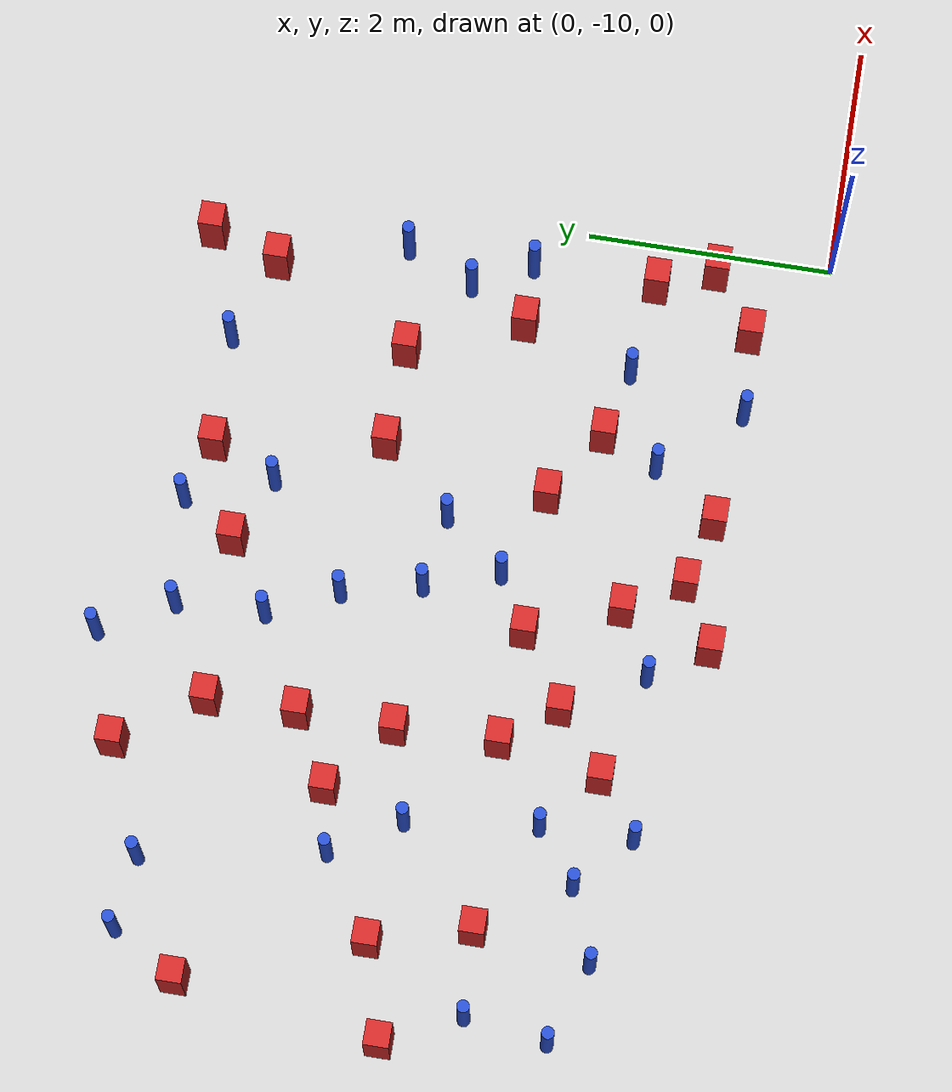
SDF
<sdf version="1.6">
 <world name="default">
  <model name="ground_plane">
   <static>1</static>
   <link name="link">
    <collision name="collision">
     <geometry><plane><normal>0 0 1</normal><size>100 100</size></plane></geometry>
     <surface><friction><ode><mu>100</mu><mu2>50</mu2></ode></friction></surface>
    </collision>
    <visual name="visual">
     <cast_shadows>0</cast_shadows>
     <geometry><plane><normal>0 0 1</normal><size>100 100</size></plane></geometry>
     <material>
      <ambient>1.0 1.0 1.0 1.0</ambient>
      <diffuse>0.8 0.8 0.8 1.0</diffuse>
      <specular>0.01 0.01 0.01 1.000000</specular>
     </material>
    </visual>
   </link>
  </model>
  <model name="pole_obstacle8">
   <static>true</static>
   <pose>-5.01428291551 -9.12350904369 -9.47619616065e-06 5.49618799737e-07 2.36310414065e-07 -1.55090534796e-07</pose>
   <link name="link">
    <pose>0 0 0.3 0 -0 0</pose>
    <inertial>
     <mass>1</mass>
     <inertia><ixx>0.145833</ixx><ixy>0</ixy><ixz>0</ixz><iyy>0.145833</iyy><iyz>0</iyz><izz>0.125</izz></inertia>
    </inertial>
    <collision name="collision">
     <geometry><cylinder><radius>0.05</radius><length>.6</length></cylinder></geometry>
    </collision>
    <visual name="visual">
     <geometry><cylinder><radius>0.05</radius><length>.6</length></cylinder></geometry>
     <material>
      <script><name>Gazebo/Blue</name><uri>file://media/materials/scripts/gazebo.material</uri></script>
     </material>
    </visual>
   </link>
  </model>
  <model name="square_post_obstacle5">
   <static>true</static>
   <pose>-4.4312994662 -7.13340059479 -6.11067671241e-07 -5.50515727128e-06 -8.79689657224e-07 2.37013304536e-05</pose>
   <link name="link">
    <pose>0 0 0.25 0 -0 0</pose>
    <inertial>
     <mass>100</mass>
     <inertia>
      <ixx>0.166667</ixx>
      <ixy>0</ixy>
      <ixz>0</ixz>
      <iyy>0.166667</iyy>
      <iyz>0</iyz>
      <izz>0.166667</izz>
     </inertia>
    </inertial>
    <collision name="collision"><geometry><box><size>.2 .2 .5</size></box></geometry></collision>
    <visual name="visual">
     <geometry><box><size>.2 .2 .5</size></box></geometry>
     <material>
      <script><name>Gazebo/Red</name><uri>file://media/materials/scripts/gazebo.material</uri></script>
     </material>
    </visual>
   </link>
  </model>
  <model name="square_post_obstacle8">
   <static>true</static>
   <pose>-0.903577958004 -7.60333633524 -6.11067671241e-07 -5.50515727128e-06 -8.79689657224e-07 2.37013304536e-05</pose>
   <link name="link">
    <pose>0 0 0.25 0 -0 0</pose>
    <inertial>
     <mass>100</mass>
     <inertia>
      <ixx>0.166667</ixx>
      <ixy>0</ixy>
      <ixz>0</ixz>
      <iyy>0.166667</iyy>
      <iyz>0</iyz>
      <izz>0.166667</izz>
     </inertia>
    </inertial>
    <collision name="collision"><geometry><box><size>.2 .2 .5</size></box></geometry></collision>
    <visual name="visual">
     <geometry><box><size>.2 .2 .5</size></box></geometry>
     <material>
      <script><name>Gazebo/Red</name><uri>file://media/materials/scripts/gazebo.material</uri></script>
     </material>
    </visual>
   </link>
  </model>
  <model name="pole_obstacle16">
   <static>true</static>
   <pose>-5.76489984956 -5.33657778358 -9.47619616065e-06 5.49618799737e-07 2.36310414037e-07 -1.55090534814e-07</pose>
   <link name="link">
    <pose>0 0 0.3 0 -0 0</pose>
    <inertial>
     <mass>1</mass>
     <inertia><ixx>0.145833</ixx><ixy>0</ixy><ixz>0</ixz><iyy>0.145833</iyy><iyz>0</iyz><izz>0.125</izz></inertia>
    </inertial>
    <collision name="collision">
     <geometry><cylinder><radius>0.05</radius><length>.6</length></cylinder></geometry>
    </collision>
    <visual name="visual">
     <geometry><cylinder><radius>0.05</radius><length>.6</length></cylinder></geometry>
     <material>
      <script><name>Gazebo/Blue</name><uri>file://media/materials/scripts/gazebo.material</uri></script>
     </material>
    </visual>
   </link>
  </model>
  <model name="pole_obstacle23">
   <static>true</static>
   <pose>-2.64278070456 -7.25501971859 -9.47619616065e-06 5.49618799738e-07 2.3631041406e-07 -1.55090534801e-07</pose>
   <link name="link">
    <pose>0 0 0.3 0 -0 0</pose>
    <inertial>
     <mass>1</mass>
     <inertia><ixx>0.145833</ixx><ixy>0</ixy><ixz>0</ixz><iyy>0.145833</iyy><iyz>0</iyz><izz>0.125</izz></inertia>
    </inertial>
    <collision name="collision">
     <geometry><cylinder><radius>0.05</radius><length>.6</length></cylinder></geometry>
    </collision>
    <visual name="visual">
     <geometry><cylinder><radius>0.05</radius><length>.6</length></cylinder></geometry>
     <material>
      <script><name>Gazebo/Blue</name><uri>file://media/materials/scripts/gazebo.material</uri></script>
     </material>
    </visual>
   </link>
  </model>
  <model name="pole_obstacle24">
   <static>true</static>
   <pose>-2.5588383863 -5.83410289442 -9.47619616065e-06 5.49618799738e-07 2.3631041406e-07 -1.55090534801e-07</pose>
   <link name="link">
    <pose>0 0 0.3 0 -0 0</pose>
    <inertial>
     <mass>1</mass>
     <inertia><ixx>0.145833</ixx><ixy>0</ixy><ixz>0</ixz><iyy>0.145833</iyy><iyz>0</iyz><izz>0.125</izz></inertia>
    </inertial>
    <collision name="collision">
     <geometry><cylinder><radius>0.05</radius><length>.6</length></cylinder></geometry>
    </collision>
    <visual name="visual">
     <geometry><cylinder><radius>0.05</radius><length>.6</length></cylinder></geometry>
     <material>
      <script><name>Gazebo/Blue</name><uri>file://media/materials/scripts/gazebo.material</uri></script>
     </material>
    </visual>
   </link>
  </model>
  <model name="square_post_obstacle20">
   <static>true</static>
   <pose>-3.4833048149 -8.01276227138 -6.11067671241e-07 -5.50515727128e-06 -8.79689657224e-07 2.37013304536e-05</pose>
   <link name="link">
    <pose>0 0 0.25 0 -0 0</pose>
    <inertial>
     <mass>100</mass>
     <inertia>
      <ixx>0.166667</ixx>
      <ixy>0</ixy>
      <ixz>0</ixz>
      <iyy>0.166667</iyy>
      <iyz>0</iyz>
      <izz>0.166667</izz>
     </inertia>
    </inertial>
    <collision name="collision"><geometry><box><size>.2 .2 .5</size></box></geometry></collision>
    <visual name="visual">
     <geometry><box><size>.2 .2 .5</size></box></geometry>
     <material>
      <script><name>Gazebo/Red</name><uri>file://media/materials/scripts/gazebo.material</uri></script>
     </material>
    </visual>
   </link>
  </model>
  <model name="square_post_obstacle23">
   <static>true</static>
   <pose>-4.40262283781 -7.96260771862 -6.11067671241e-07 -5.50515727128e-06 -8.79689657224e-07 2.37013304536e-05</pose>
   <link name="link">
    <pose>0 0 0.25 0 -0 0</pose>
    <inertial>
     <mass>100</mass>
     <inertia>
      <ixx>0.166667</ixx>
      <ixy>0</ixy>
      <ixz>0</ixz>
      <iyy>0.166667</iyy>
      <iyz>0</iyz>
      <izz>0.166667</izz>
     </inertia>
    </inertial>
    <collision name="collision"><geometry><box><size>.2 .2 .5</size></box></geometry></collision>
    <visual name="visual">
     <geometry><box><size>.2 .2 .5</size></box></geometry>
     <material>
      <script><name>Gazebo/Red</name><uri>file://media/materials/scripts/gazebo.material</uri></script>
     </material>
    </visual>
   </link>
  </model>
  <model name="square_post_obstacle24">
   <static>true</static>
   <pose>-3.39527635941 -9.48242102883 -6.11067671241e-07 -5.50515727128e-06 -8.79689657224e-07 2.37013304536e-05</pose>
   <link name="link">
    <pose>0 0 0.25 0 -0 0</pose>
    <inertial>
     <mass>100</mass>
     <inertia>
      <ixx>0.166667</ixx>
      <ixy>0</ixy>
      <ixz>0</ixz>
      <iyy>0.166667</iyy>
      <iyz>0</iyz>
      <izz>0.166667</izz>
     </inertia>
    </inertial>
    <collision name="collision"><geometry><box><size>.2 .2 .5</size></box></geometry></collision>
    <visual name="visual">
     <geometry><box><size>.2 .2 .5</size></box></geometry>
     <material>
      <script><name>Gazebo/Red</name><uri>file://media/materials/scripts/gazebo.material</uri></script>
     </material>
    </visual>
   </link>
  </model>
  <model name="pole_obstacle32">
   <static>true</static>
   <pose>-0.398670248215 -6.56019914314 -9.47619616065e-06 5.49618799737e-07 2.36310414065e-07 -1.55090534796e-07</pose>
   <link name="link">
    <pose>0 0 0.3 0 -0 0</pose>
    <inertial>
     <mass>1</mass>
     <inertia><ixx>0.145833</ixx><ixy>0</ixy><ixz>0</ixz><iyy>0.145833</iyy><iyz>0</iyz><izz>0.125</izz></inertia>
    </inertial>
    <collision name="collision">
     <geometry><cylinder><radius>0.05</radius><length>.6</length></cylinder></geometry>
    </collision>
    <visual name="visual">
     <geometry><cylinder><radius>0.05</radius><length>.6</length></cylinder></geometry>
     <material>
      <script><name>Gazebo/Blue</name><uri>file://media/materials/scripts/gazebo.material</uri></script>
     </material>
    </visual>
   </link>
  </model>
  <model name="pole_obstacle41">
   <static>true</static>
   <pose>-5.45880167694 -8.71432877472 -9.47619616065e-06 5.49618799737e-07 2.36310414065e-07 -1.55090534796e-07</pose>
   <link name="link">
    <pose>0 0 0.3 0 -0 0</pose>
    <inertial>
     <mass>1</mass>
     <inertia><ixx>0.145833</ixx><ixy>0</ixy><ixz>0</ixz><iyy>0.145833</iyy><iyz>0</iyz><izz>0.125</izz></inertia>
    </inertial>
    <collision name="collision">
     <geometry><cylinder><radius>0.05</radius><length>.6</length></cylinder></geometry>
    </collision>
    <visual name="visual">
     <geometry><cylinder><radius>0.05</radius><length>.6</length></cylinder></geometry>
     <material>
      <script><name>Gazebo/Blue</name><uri>file://media/materials/scripts/gazebo.material</uri></script>
     </material>
    </visual>
   </link>
  </model>
  <model name="square_post_obstacle40">
   <static>true</static>
   <pose>-4.43146754992 -5.63641449868 -6.11067671241e-07 -5.50515727128e-06 -8.79689657224e-07 2.37013304536e-05</pose>
   <link name="link">
    <pose>0 0 0.25 0 -0 0</pose>
    <inertial>
     <mass>100</mass>
     <inertia>
      <ixx>0.166667</ixx>
      <ixy>0</ixy>
      <ixz>0</ixz>
      <iyy>0.166667</iyy>
      <iyz>0</iyz>
      <izz>0.166667</izz>
     </inertia>
    </inertial>
    <collision name="collision"><geometry><box><size>.2 .2 .5</size></box></geometry></collision>
    <visual name="visual">
     <geometry><box><size>.2 .2 .5</size></box></geometry>
     <material>
      <script><name>Gazebo/Red</name><uri>file://media/materials/scripts/gazebo.material</uri></script>
     </material>
    </visual>
   </link>
  </model>
  <model name="square_post_obstacle42">
   <static>true</static>
   <pose>-4.88472273905 -4.97600409846 -6.11067671241e-07 -5.50515727128e-06 -8.79689657224e-07 2.37013304536e-05</pose>
   <link name="link">
    <pose>0 0 0.25 0 -0 0</pose>
    <inertial>
     <mass>100</mass>
     <inertia>
      <ixx>0.166667</ixx>
      <ixy>0</ixy>
      <ixz>0</ixz>
      <iyy>0.166667</iyy>
      <iyz>0</iyz>
      <izz>0.166667</izz>
     </inertia>
    </inertial>
    <collision name="collision"><geometry><box><size>.2 .2 .5</size></box></geometry></collision>
    <visual name="visual">
     <geometry><box><size>.2 .2 .5</size></box></geometry>
     <material>
      <script><name>Gazebo/Red</name><uri>file://media/materials/scripts/gazebo.material</uri></script>
     </material>
    </visual>
   </link>
  </model>
  <model name="pole_obstacle64">
   <static>true</static>
   <pose>-6.59971508802 -8.04857687455 -9.47619616065e-06 5.49618799737e-07 2.36310414032e-07 -1.55090534819e-07</pose>
   <link name="link">
    <pose>0 0 0.3 0 -0 0</pose>
    <inertial>
     <mass>1</mass>
     <inertia><ixx>0.145833</ixx><ixy>0</ixy><ixz>0</ixz><iyy>0.145833</iyy><iyz>0</iyz><izz>0.125</izz></inertia>
    </inertial>
    <collision name="collision">
     <geometry><cylinder><radius>0.05</radius><length>.6</length></cylinder></geometry>
    </collision>
    <visual name="visual">
     <geometry><cylinder><radius>0.05</radius><length>.6</length></cylinder></geometry>
     <material>
      <script><name>Gazebo/Blue</name><uri>file://media/materials/scripts/gazebo.material</uri></script>
     </material>
    </visual>
   </link>
  </model>
  <model name="pole_obstacle67">
   <static>true</static>
   <pose>-1.95901038354 -8.83952854689 -9.47619616065e-06 5.49618799737e-07 2.36310414046e-07 -1.55090534809e-07</pose>
   <link name="link">
    <pose>0 0 0.3 0 -0 0</pose>
    <inertial>
     <mass>1</mass>
     <inertia><ixx>0.145833</ixx><ixy>0</ixy><ixz>0</ixz><iyy>0.145833</iyy><iyz>0</iyz><izz>0.125</izz></inertia>
    </inertial>
    <collision name="collision">
     <geometry><cylinder><radius>0.05</radius><length>.6</length></cylinder></geometry>
    </collision>
    <visual name="visual">
     <geometry><cylinder><radius>0.05</radius><length>.6</length></cylinder></geometry>
     <material>
      <script><name>Gazebo/Blue</name><uri>file://media/materials/scripts/gazebo.material</uri></script>
     </material>
    </visual>
   </link>
  </model>
  <model name="square_post_obstacle52">
   <static>true</static>
   <pose>-0.399466107963 -8.60748303828 -6.11067671241e-07 -5.50515727128e-06 -8.79689657224e-07 2.37013304536e-05</pose>
   <link name="link">
    <pose>0 0 0.25 0 -0 0</pose>
    <inertial>
     <mass>100</mass>
     <inertia>
      <ixx>0.166667</ixx>
      <ixy>0</ixy>
      <ixz>0</ixz>
      <iyy>0.166667</iyy>
      <iyz>0</iyz>
      <izz>0.166667</izz>
     </inertia>
    </inertial>
    <collision name="collision"><geometry><box><size>.2 .2 .5</size></box></geometry></collision>
    <visual name="visual">
     <geometry><box><size>.2 .2 .5</size></box></geometry>
     <material>
      <script><name>Gazebo/Red</name><uri>file://media/materials/scripts/gazebo.material</uri></script>
     </material>
    </visual>
   </link>
  </model>
  <model name="pole_obstacle70">
   <static>true</static>
   <pose>-3.70035876921 -9.02923681588 -9.4761961606e-06 5.49618799729e-07 2.36310414e-07 -1.55090534824e-07</pose>
   <link name="link">
    <pose>0 0 0.3 0 -0 0</pose>
    <inertial>
     <mass>1</mass>
     <inertia><ixx>0.145833</ixx><ixy>0</ixy><ixz>0</ixz><iyy>0.145833</iyy><iyz>0</iyz><izz>0.125</izz></inertia>
    </inertial>
    <collision name="collision">
     <geometry><cylinder><radius>0.05</radius><length>.6</length></cylinder></geometry>
    </collision>
    <visual name="visual">
     <geometry><cylinder><radius>0.05</radius><length>.6</length></cylinder></geometry>
     <material>
      <script><name>Gazebo/Blue</name><uri>file://media/materials/scripts/gazebo.material</uri></script>
     </material>
    </visual>
   </link>
  </model>
  <model name="pole_obstacle72">
   <static>true</static>
   <pose>-3.70303293443 -5.24221795542 -9.47619616065e-06 5.49618799738e-07 2.3631041406e-07 -1.55090534801e-07</pose>
   <link name="link">
    <pose>0 0 0.3 0 -0 0</pose>
    <inertial>
     <mass>1</mass>
     <inertia><ixx>0.145833</ixx><ixy>0</ixy><ixz>0</ixz><iyy>0.145833</iyy><iyz>0</iyz><izz>0.125</izz></inertia>
    </inertial>
    <collision name="collision">
     <geometry><cylinder><radius>0.05</radius><length>.6</length></cylinder></geometry>
    </collision>
    <visual name="visual">
     <geometry><cylinder><radius>0.05</radius><length>.6</length></cylinder></geometry>
     <material>
      <script><name>Gazebo/Blue</name><uri>file://media/materials/scripts/gazebo.material</uri></script>
     </material>
    </visual>
   </link>
  </model>
  <model name="pole_obstacle77">
   <static>true</static>
   <pose>-4.02257670628 -4.66726088849 -9.47619616065e-06 5.49618799737e-07 2.36310414031e-07 -1.55090534817e-07</pose>
   <link name="link">
    <pose>0 0 0.3 0 -0 0</pose>
    <inertial>
     <mass>1</mass>
     <inertia><ixx>0.145833</ixx><ixy>0</ixy><ixz>0</ixz><iyy>0.145833</iyy><iyz>0</iyz><izz>0.125</izz></inertia>
    </inertial>
    <collision name="collision">
     <geometry><cylinder><radius>0.05</radius><length>.6</length></cylinder></geometry>
    </collision>
    <visual name="visual">
     <geometry><cylinder><radius>0.05</radius><length>.6</length></cylinder></geometry>
     <material>
      <script><name>Gazebo/Blue</name><uri>file://media/materials/scripts/gazebo.material</uri></script>
     </material>
    </visual>
   </link>
  </model>
  <model name="square_post_obstacle74">
   <static>true</static>
   <pose>-2.88524146707 -9.21286780494 -6.11067671241e-07 -5.50515727128e-06 -8.79689657224e-07 2.37013304536e-05</pose>
   <link name="link">
    <pose>0 0 0.25 0 -0 0</pose>
    <inertial>
     <mass>100</mass>
     <inertia>
      <ixx>0.166667</ixx>
      <ixy>0</ixy>
      <ixz>0</ixz>
      <iyy>0.166667</iyy>
      <iyz>0</iyz>
      <izz>0.166667</izz>
     </inertia>
    </inertial>
    <collision name="collision"><geometry><box><size>.2 .2 .5</size></box></geometry></collision>
    <visual name="visual">
     <geometry><box><size>.2 .2 .5</size></box></geometry>
     <material>
      <script><name>Gazebo/Red</name><uri>file://media/materials/scripts/gazebo.material</uri></script>
     </material>
    </visual>
   </link>
  </model>
  <model name="square_post_obstacle79">
   <static>true</static>
   <pose>-3.09264702371 -5.59718335735 -6.11067671241e-07 -5.50515727128e-06 -8.79689657224e-07 2.37013304536e-05</pose>
   <link name="link">
    <pose>0 0 0.25 0 -0 0</pose>
    <inertial>
     <mass>100</mass>
     <inertia>
      <ixx>0.166667</ixx>
      <ixy>0</ixy>
      <ixz>0</ixz>
      <iyy>0.166667</iyy>
      <iyz>0</iyz>
      <izz>0.166667</izz>
     </inertia>
    </inertial>
    <collision name="collision"><geometry><box><size>.2 .2 .5</size></box></geometry></collision>
    <visual name="visual">
     <geometry><box><size>.2 .2 .5</size></box></geometry>
     <material>
      <script><name>Gazebo/Red</name><uri>file://media/materials/scripts/gazebo.material</uri></script>
     </material>
    </visual>
   </link>
  </model>
  <model name="square_post_obstacle85">
   <static>true</static>
   <pose>-0.504826252759 -4.95468192824 -6.11067671241e-07 -5.50515727128e-06 -8.79689657224e-07 2.37013304536e-05</pose>
   <link name="link">
    <pose>0 0 0.25 0 -0 0</pose>
    <inertial>
     <mass>100</mass>
     <inertia>
      <ixx>0.166667</ixx>
      <ixy>0</ixy>
      <ixz>0</ixz>
      <iyy>0.166667</iyy>
      <iyz>0</iyz>
      <izz>0.166667</izz>
     </inertia>
    </inertial>
    <collision name="collision"><geometry><box><size>.2 .2 .5</size></box></geometry></collision>
    <visual name="visual">
     <geometry><box><size>.2 .2 .5</size></box></geometry>
     <material>
      <script><name>Gazebo/Red</name><uri>file://media/materials/scripts/gazebo.material</uri></script>
     </material>
    </visual>
   </link>
  </model>
  <model name="square_post_obstacle95">
   <static>true</static>
   <pose>-0.688046202366 -5.52482137997 -6.11067671241e-07 -5.50515727128e-06 -8.79689657224e-07 2.37013304536e-05</pose>
   <link name="link">
    <pose>0 0 0.25 0 -0 0</pose>
    <inertial>
     <mass>100</mass>
     <inertia>
      <ixx>0.166667</ixx>
      <ixy>0</ixy>
      <ixz>0</ixz>
      <iyy>0.166667</iyy>
      <iyz>0</iyz>
      <izz>0.166667</izz>
     </inertia>
    </inertial>
    <collision name="collision"><geometry><box><size>.2 .2 .5</size></box></geometry></collision>
    <visual name="visual">
     <geometry><box><size>.2 .2 .5</size></box></geometry>
     <material>
      <script><name>Gazebo/Red</name><uri>file://media/materials/scripts/gazebo.material</uri></script>
     </material>
    </visual>
   </link>
  </model>
  <model name="square_post_obstacle96">
   <static>true</static>
   <pose>-4.42448574992 -6.35917375411 -6.11067671241e-07 -5.50515727128e-06 -8.79689657224e-07 2.37013304536e-05</pose>
   <link name="link">
    <pose>0 0 0.25 0 -0 0</pose>
    <inertial>
     <mass>100</mass>
     <inertia>
      <ixx>0.166667</ixx>
      <ixy>0</ixy>
      <ixz>0</ixz>
      <iyy>0.166667</iyy>
      <iyz>0</iyz>
      <izz>0.166667</izz>
     </inertia>
    </inertial>
    <collision name="collision"><geometry><box><size>.2 .2 .5</size></box></geometry></collision>
    <visual name="visual">
     <geometry><box><size>.2 .2 .5</size></box></geometry>
     <material>
      <script><name>Gazebo/Red</name><uri>file://media/materials/scripts/gazebo.material</uri></script>
     </material>
    </visual>
   </link>
  </model>
  <model name="square_post_obstacle100">
   <static>true</static>
   <pose>-6.8904408907 -7.44222644864 -6.11067671241e-07 -5.50515727128e-06 -8.79689657224e-07 2.37013304536e-05</pose>
   <link name="link">
    <pose>0 0 0.25 0 -0 0</pose>
    <inertial>
     <mass>100</mass>
     <inertia>
      <ixx>0.166667</ixx>
      <ixy>0</ixy>
      <ixz>0</ixz>
      <iyy>0.166667</iyy>
      <iyz>0</iyz>
      <izz>0.166667</izz>
     </inertia>
    </inertial>
    <collision name="collision"><geometry><box><size>.2 .2 .5</size></box></geometry></collision>
    <visual name="visual">
     <geometry><box><size>.2 .2 .5</size></box></geometry>
     <material>
      <script><name>Gazebo/Red</name><uri>file://media/materials/scripts/gazebo.material</uri></script>
     </material>
    </visual>
   </link>
  </model>
  <model name="pole_obstacle109">
   <static>true</static>
   <pose>-5.5009239307 -6.78610476362 -9.47619616065e-06 5.49618799737e-07 2.36310414037e-07 -1.55090534814e-07</pose>
   <link name="link">
    <pose>0 0 0.3 0 -0 0</pose>
    <inertial>
     <mass>1</mass>
     <inertia><ixx>0.145833</ixx><ixy>0</ixy><ixz>0</ixz><iyy>0.145833</iyy><iyz>0</iyz><izz>0.125</izz></inertia>
    </inertial>
    <collision name="collision">
     <geometry><cylinder><radius>0.05</radius><length>.6</length></cylinder></geometry>
    </collision>
    <visual name="visual">
     <geometry><cylinder><radius>0.05</radius><length>.6</length></cylinder></geometry>
     <material>
      <script><name>Gazebo/Blue</name><uri>file://media/materials/scripts/gazebo.material</uri></script>
     </material>
    </visual>
   </link>
  </model>
  <model name="pole_obstacle110">
   <static>true</static>
   <pose>-3.40444007782 -6.5200087828 -9.4761961606e-06 5.49618799729e-07 2.36310414006e-07 -1.55090534822e-07</pose>
   <link name="link">
    <pose>0 0 0.3 0 -0 0</pose>
    <inertial>
     <mass>1</mass>
     <inertia><ixx>0.145833</ixx><ixy>0</ixy><ixz>0</ixz><iyy>0.145833</iyy><iyz>0</iyz><izz>0.125</izz></inertia>
    </inertial>
    <collision name="collision">
     <geometry><cylinder><radius>0.05</radius><length>.6</length></cylinder></geometry>
    </collision>
    <visual name="visual">
     <geometry><cylinder><radius>0.05</radius><length>.6</length></cylinder></geometry>
     <material>
      <script><name>Gazebo/Blue</name><uri>file://media/materials/scripts/gazebo.material</uri></script>
     </material>
    </visual>
   </link>
  </model>
  <model name="square_post_obstacle106">
   <static>true</static>
   <pose>-2.33176852509 -8.01464676679 -6.11067671241e-07 -5.50515727128e-06 -8.79689657224e-07 2.37013304536e-05</pose>
   <link name="link">
    <pose>0 0 0.25 0 -0 0</pose>
    <inertial>
     <mass>100</mass>
     <inertia>
      <ixx>0.166667</ixx>
      <ixy>0</ixy>
      <ixz>0</ixz>
      <iyy>0.166667</iyy>
      <iyz>0</iyz>
      <izz>0.166667</izz>
     </inertia>
    </inertial>
    <collision name="collision"><geometry><box><size>.2 .2 .5</size></box></geometry></collision>
    <visual name="visual">
     <geometry><box><size>.2 .2 .5</size></box></geometry>
     <material>
      <script><name>Gazebo/Red</name><uri>file://media/materials/scripts/gazebo.material</uri></script>
     </material>
    </visual>
   </link>
  </model>
  <model name="square_post_obstacle113">
   <static>true</static>
   <pose>-0.206811984447 -9.07576977207 -6.11067671241e-07 -5.50515727128e-06 -8.79689657224e-07 2.37013304536e-05</pose>
   <link name="link">
    <pose>0 0 0.25 0 -0 0</pose>
    <inertial>
     <mass>100</mass>
     <inertia>
      <ixx>0.166667</ixx>
      <ixy>0</ixy>
      <ixz>0</ixz>
      <iyy>0.166667</iyy>
      <iyz>0</iyz>
      <izz>0.166667</izz>
     </inertia>
    </inertial>
    <collision name="collision"><geometry><box><size>.2 .2 .5</size></box></geometry></collision>
    <visual name="visual">
     <geometry><box><size>.2 .2 .5</size></box></geometry>
     <material>
      <script><name>Gazebo/Red</name><uri>file://media/materials/scripts/gazebo.material</uri></script>
     </material>
    </visual>
   </link>
  </model>
  <model name="square_post_obstacle114">
   <static>true</static>
   <pose>-1.75241279594 -8.3817123278 -6.11067671241e-07 -5.50515727128e-06 -8.79689657224e-07 2.37013304536e-05</pose>
   <link name="link">
    <pose>0 0 0.25 0 -0 0</pose>
    <inertial>
     <mass>100</mass>
     <inertia>
      <ixx>0.166667</ixx>
      <ixy>0</ixy>
      <ixz>0</ixz>
      <iyy>0.166667</iyy>
      <iyz>0</iyz>
      <izz>0.166667</izz>
     </inertia>
    </inertial>
    <collision name="collision"><geometry><box><size>.2 .2 .5</size></box></geometry></collision>
    <visual name="visual">
     <geometry><box><size>.2 .2 .5</size></box></geometry>
     <material>
      <script><name>Gazebo/Red</name><uri>file://media/materials/scripts/gazebo.material</uri></script>
     </material>
    </visual>
   </link>
  </model>
  <model name="square_post_obstacle116">
   <static>true</static>
   <pose>-6.1342621968 -7.21818899888 -6.11067671241e-07 -5.50515727128e-06 -8.79689657224e-07 2.37013304536e-05</pose>
   <link name="link">
    <pose>0 0 0.25 0 -0 0</pose>
    <inertial>
     <mass>100</mass>
     <inertia>
      <ixx>0.166667</ixx>
      <ixy>0</ixy>
      <ixz>0</ixz>
      <iyy>0.166667</iyy>
      <iyz>0</iyz>
      <izz>0.166667</izz>
     </inertia>
    </inertial>
    <collision name="collision"><geometry><box><size>.2 .2 .5</size></box></geometry></collision>
    <visual name="visual">
     <geometry><box><size>.2 .2 .5</size></box></geometry>
     <material>
      <script><name>Gazebo/Red</name><uri>file://media/materials/scripts/gazebo.material</uri></script>
     </material>
    </visual>
   </link>
  </model>
  <model name="pole_obstacle123">
   <static>true</static>
   <pose>-3.24522904773 -7.15786338231 -9.47619616065e-06 5.49618799738e-07 2.3631041406e-07 -1.55090534801e-07</pose>
   <link name="link">
    <pose>0 0 0.3 0 -0 0</pose>
    <inertial>
     <mass>1</mass>
     <inertia><ixx>0.145833</ixx><ixy>0</ixy><ixz>0</ixz><iyy>0.145833</iyy><iyz>0</iyz><izz>0.125</izz></inertia>
    </inertial>
    <collision name="collision">
     <geometry><cylinder><radius>0.05</radius><length>.6</length></cylinder></geometry>
    </collision>
    <visual name="visual">
     <geometry><cylinder><radius>0.05</radius><length>.6</length></cylinder></geometry>
     <material>
      <script><name>Gazebo/Blue</name><uri>file://media/materials/scripts/gazebo.material</uri></script>
     </material>
    </visual>
   </link>
  </model>
  <model name="pole_obstacle130">
   <static>true</static>
   <pose>-6.35581359476 -5.27135985099 -9.47619616065e-06 5.49618799737e-07 2.36310414037e-07 -1.55090534814e-07</pose>
   <link name="link">
    <pose>0 0 0.3 0 -0 0</pose>
    <inertial>
     <mass>1</mass>
     <inertia><ixx>0.145833</ixx><ixy>0</ixy><ixz>0</ixz><iyy>0.145833</iyy><iyz>0</iyz><izz>0.125</izz></inertia>
    </inertial>
    <collision name="collision">
     <geometry><cylinder><radius>0.05</radius><length>.6</length></cylinder></geometry>
    </collision>
    <visual name="visual">
     <geometry><cylinder><radius>0.05</radius><length>.6</length></cylinder></geometry>
     <material>
      <script><name>Gazebo/Blue</name><uri>file://media/materials/scripts/gazebo.material</uri></script>
     </material>
    </visual>
   </link>
  </model>
  <model name="pole_obstacle132">
   <static>true</static>
   <pose>-2.82079557666 -5.14591446593 -9.47619616065e-06 5.49618799738e-07 2.3631041406e-07 -1.55090534801e-07</pose>
   <link name="link">
    <pose>0 0 0.3 0 -0 0</pose>
    <inertial>
     <mass>1</mass>
     <inertia><ixx>0.145833</ixx><ixy>0</ixy><ixz>0</ixz><iyy>0.145833</iyy><iyz>0</iyz><izz>0.125</izz></inertia>
    </inertial>
    <collision name="collision">
     <geometry><cylinder><radius>0.05</radius><length>.6</length></cylinder></geometry>
    </collision>
    <visual name="visual">
     <geometry><cylinder><radius>0.05</radius><length>.6</length></cylinder></geometry>
     <material>
      <script><name>Gazebo/Blue</name><uri>file://media/materials/scripts/gazebo.material</uri></script>
     </material>
    </visual>
   </link>
  </model>
  <model name="pole_obstacle134">
   <static>true</static>
   <pose>-3.04483400528 -7.75885524843 -9.4761961606e-06 5.49618799729e-07 2.36310414006e-07 -1.55090534822e-07</pose>
   <link name="link">
    <pose>0 0 0.3 0 -0 0</pose>
    <inertial>
     <mass>1</mass>
     <inertia><ixx>0.145833</ixx><ixy>0</ixy><ixz>0</ixz><iyy>0.145833</iyy><iyz>0</iyz><izz>0.125</izz></inertia>
    </inertial>
    <collision name="collision">
     <geometry><cylinder><radius>0.05</radius><length>.6</length></cylinder></geometry>
    </collision>
    <visual name="visual">
     <geometry><cylinder><radius>0.05</radius><length>.6</length></cylinder></geometry>
     <material>
      <script><name>Gazebo/Blue</name><uri>file://media/materials/scripts/gazebo.material</uri></script>
     </material>
    </visual>
   </link>
  </model>
  <model name="square_post_obstacle134">
   <static>true</static>
   <pose>-2.32312949637 -5.30421389103 -6.11067671241e-07 -5.50515727128e-06 -8.79689657224e-07 2.37013304536e-05</pose>
   <link name="link">
    <pose>0 0 0.25 0 -0 0</pose>
    <inertial>
     <mass>100</mass>
     <inertia>
      <ixx>0.166667</ixx>
      <ixy>0</ixy>
      <ixz>0</ixz>
      <iyy>0.166667</iyy>
      <iyz>0</iyz>
      <izz>0.166667</izz>
     </inertia>
    </inertial>
    <collision name="collision"><geometry><box><size>.2 .2 .5</size></box></geometry></collision>
    <visual name="visual">
     <geometry><box><size>.2 .2 .5</size></box></geometry>
     <material>
      <script><name>Gazebo/Red</name><uri>file://media/materials/scripts/gazebo.material</uri></script>
     </material>
    </visual>
   </link>
  </model>
  <model name="pole_obstacle142">
   <static>true</static>
   <pose>-1.18665390888 -8.51481148886 -9.47619616065e-06 5.49618799737e-07 2.36310414046e-07 -1.55090534809e-07</pose>
   <link name="link">
    <pose>0 0 0.3 0 -0 0</pose>
    <inertial>
     <mass>1</mass>
     <inertia><ixx>0.145833</ixx><ixy>0</ixy><ixz>0</ixz><iyy>0.145833</iyy><iyz>0</iyz><izz>0.125</izz></inertia>
    </inertial>
    <collision name="collision">
     <geometry><cylinder><radius>0.05</radius><length>.6</length></cylinder></geometry>
    </collision>
    <visual name="visual">
     <geometry><cylinder><radius>0.05</radius><length>.6</length></cylinder></geometry>
     <material>
      <script><name>Gazebo/Blue</name><uri>file://media/materials/scripts/gazebo.material</uri></script>
     </material>
    </visual>
   </link>
  </model>
  <model name="pole_obstacle152">
   <static>true</static>
   <pose>-1.40390731024 -5.26667237096 -9.47619616065e-06 5.49618799737e-07 2.36310414061e-07 -1.550905348e-07</pose>
   <link name="link">
    <pose>0 0 0.3 0 -0 0</pose>
    <inertial>
     <mass>1</mass>
     <inertia><ixx>0.145833</ixx><ixy>0</ixy><ixz>0</ixz><iyy>0.145833</iyy><iyz>0</iyz><izz>0.125</izz></inertia>
    </inertial>
    <collision name="collision">
     <geometry><cylinder><radius>0.05</radius><length>.6</length></cylinder></geometry>
    </collision>
    <visual name="visual">
     <geometry><cylinder><radius>0.05</radius><length>.6</length></cylinder></geometry>
     <material>
      <script><name>Gazebo/Blue</name><uri>file://media/materials/scripts/gazebo.material</uri></script>
     </material>
    </visual>
   </link>
  </model>
  <model name="square_post_obstacle149">
   <static>true</static>
   <pose>-2.0921859409 -6.66620003759 -6.11067671241e-07 -5.50515727128e-06 -8.79689657224e-07 2.37013304536e-05</pose>
   <link name="link">
    <pose>0 0 0.25 0 -0 0</pose>
    <inertial>
     <mass>100</mass>
     <inertia>
      <ixx>0.166667</ixx>
      <ixy>0</ixy>
      <ixz>0</ixz>
      <iyy>0.166667</iyy>
      <iyz>0</iyz>
      <izz>0.166667</izz>
     </inertia>
    </inertial>
    <collision name="collision"><geometry><box><size>.2 .2 .5</size></box></geometry></collision>
    <visual name="visual">
     <geometry><box><size>.2 .2 .5</size></box></geometry>
     <material>
      <script><name>Gazebo/Red</name><uri>file://media/materials/scripts/gazebo.material</uri></script>
     </material>
    </visual>
   </link>
  </model>
  <model name="square_post_obstacle161">
   <static>true</static>
   <pose>-5.91438709446 -8.01018825412 -6.11067671241e-07 -5.50515727128e-06 -8.79689657224e-07 2.37013304536e-05</pose>
   <link name="link">
    <pose>0 0 0.25 0 -0 0</pose>
    <inertial>
     <mass>100</mass>
     <inertia>
      <ixx>0.166667</ixx>
      <ixy>0</ixy>
      <ixz>0</ixz>
      <iyy>0.166667</iyy>
      <iyz>0</iyz>
      <izz>0.166667</izz>
     </inertia>
    </inertial>
    <collision name="collision"><geometry><box><size>.2 .2 .5</size></box></geometry></collision>
    <visual name="visual">
     <geometry><box><size>.2 .2 .5</size></box></geometry>
     <material>
      <script><name>Gazebo/Red</name><uri>file://media/materials/scripts/gazebo.material</uri></script>
     </material>
    </visual>
   </link>
  </model>
  <model name="square_post_obstacle168">
   <static>true</static>
   <pose>-2.33937867175 -9.36142079365 -6.11067671241e-07 -5.50515727128e-06 -8.79689657224e-07 2.37013304536e-05</pose>
   <link name="link">
    <pose>0 0 0.25 0 -0 0</pose>
    <inertial>
     <mass>100</mass>
     <inertia>
      <ixx>0.166667</ixx>
      <ixy>0</ixy>
      <ixz>0</ixz>
      <iyy>0.166667</iyy>
      <iyz>0</iyz>
      <izz>0.166667</izz>
     </inertia>
    </inertial>
    <collision name="collision"><geometry><box><size>.2 .2 .5</size></box></geometry></collision>
    <visual name="visual">
     <geometry><box><size>.2 .2 .5</size></box></geometry>
     <material>
      <script><name>Gazebo/Red</name><uri>file://media/materials/scripts/gazebo.material</uri></script>
     </material>
    </visual>
   </link>
  </model>
  <model name="pole_obstacle172">
   <static>true</static>
   <pose>-0.39526252129 -7.59514649002 -9.47619616065e-06 5.49618799737e-07 2.36310414065e-07 -1.55090534796e-07</pose>
   <link name="link">
    <pose>0 0 0.3 0 -0 0</pose>
    <inertial>
     <mass>1</mass>
     <inertia><ixx>0.145833</ixx><ixy>0</ixy><ixz>0</ixz><iyy>0.145833</iyy><iyz>0</iyz><izz>0.125</izz></inertia>
    </inertial>
    <collision name="collision">
     <geometry><cylinder><radius>0.05</radius><length>.6</length></cylinder></geometry>
    </collision>
    <visual name="visual">
     <geometry><cylinder><radius>0.05</radius><length>.6</length></cylinder></geometry>
     <material>
      <script><name>Gazebo/Blue</name><uri>file://media/materials/scripts/gazebo.material</uri></script>
     </material>
    </visual>
   </link>
  </model>
  <model name="pole_obstacle174">
   <static>true</static>
   <pose>-3.66916781503 -5.95773529624 -9.47619616065e-06 5.49618799738e-07 2.3631041406e-07 -1.55090534801e-07</pose>
   <link name="link">
    <pose>0 0 0.3 0 -0 0</pose>
    <inertial>
     <mass>1</mass>
     <inertia><ixx>0.145833</ixx><ixy>0</ixy><ixz>0</ixz><iyy>0.145833</iyy><iyz>0</iyz><izz>0.125</izz></inertia>
    </inertial>
    <collision name="collision">
     <geometry><cylinder><radius>0.05</radius><length>.6</length></cylinder></geometry>
    </collision>
    <visual name="visual">
     <geometry><cylinder><radius>0.05</radius><length>.6</length></cylinder></geometry>
     <material>
      <script><name>Gazebo/Blue</name><uri>file://media/materials/scripts/gazebo.material</uri></script>
     </material>
    </visual>
   </link>
  </model>
  <model name="pole_obstacle176">
   <static>true</static>
   <pose>-5.03369325228 -8.38436884027 -9.47619616065e-06 5.49618799737e-07 2.36310414065e-07 -1.55090534796e-07</pose>
   <link name="link">
    <pose>0 0 0.3 0 -0 0</pose>
    <inertial>
     <mass>1</mass>
     <inertia><ixx>0.145833</ixx><ixy>0</ixy><ixz>0</ixz><iyy>0.145833</iyy><iyz>0</iyz><izz>0.125</izz></inertia>
    </inertial>
    <collision name="collision">
     <geometry><cylinder><radius>0.05</radius><length>.6</length></cylinder></geometry>
    </collision>
    <visual name="visual">
     <geometry><cylinder><radius>0.05</radius><length>.6</length></cylinder></geometry>
     <material>
      <script><name>Gazebo/Blue</name><uri>file://media/materials/scripts/gazebo.material</uri></script>
     </material>
    </visual>
   </link>
  </model>
  <model name="square_post_obstacle184">
   <static>true</static>
   <pose>-3.17927148124 -8.74781067227 -6.11067671241e-07 -5.50515727128e-06 -8.79689657224e-07 2.37013304536e-05</pose>
   <link name="link">
    <pose>0 0 0.25 0 -0 0</pose>
    <inertial>
     <mass>100</mass>
     <inertia>
      <ixx>0.166667</ixx>
      <ixy>0</ixy>
      <ixz>0</ixz>
      <iyy>0.166667</iyy>
      <iyz>0</iyz>
      <izz>0.166667</izz>
     </inertia>
    </inertial>
    <collision name="collision"><geometry><box><size>.2 .2 .5</size></box></geometry></collision>
    <visual name="visual">
     <geometry><box><size>.2 .2 .5</size></box></geometry>
     <material>
      <script><name>Gazebo/Red</name><uri>file://media/materials/scripts/gazebo.material</uri></script>
     </material>
    </visual>
   </link>
  </model>
  <model name="pole_obstacle186">
   <static>true</static>
   <pose>-1.39561898614 -9.47049871568 -9.47619616065e-06 5.49618799737e-07 2.36310414046e-07 -1.55090534809e-07</pose>
   <link name="link">
    <pose>0 0 0.3 0 -0 0</pose>
    <inertial>
     <mass>1</mass>
     <inertia><ixx>0.145833</ixx><ixy>0</ixy><ixz>0</ixz><iyy>0.145833</iyy><iyz>0</iyz><izz>0.125</izz></inertia>
    </inertial>
    <collision name="collision">
     <geometry><cylinder><radius>0.05</radius><length>.6</length></cylinder></geometry>
    </collision>
    <visual name="visual">
     <geometry><cylinder><radius>0.05</radius><length>.6</length></cylinder></geometry>
     <material>
      <script><name>Gazebo/Blue</name><uri>file://media/materials/scripts/gazebo.material</uri></script>
     </material>
    </visual>
   </link>
  </model>
  <model name="square_post_obstacle192">
   <static>true</static>
   <pose>-1.28095016113 -6.68890957544 -6.11067671241e-07 -5.50515727128e-06 -8.79689657224e-07 2.37013304536e-05</pose>
   <link name="link">
    <pose>0 0 0.25 0 -0 0</pose>
    <inertial>
     <mass>100</mass>
     <inertia>
      <ixx>0.166667</ixx>
      <ixy>0</ixy>
      <ixz>0</ixz>
      <iyy>0.166667</iyy>
      <iyz>0</iyz>
      <izz>0.166667</izz>
     </inertia>
    </inertial>
    <collision name="collision"><geometry><box><size>.2 .2 .5</size></box></geometry></collision>
    <visual name="visual">
     <geometry><box><size>.2 .2 .5</size></box></geometry>
     <material>
      <script><name>Gazebo/Red</name><uri>file://media/materials/scripts/gazebo.material</uri></script>
     </material>
    </visual>
   </link>
  </model>
  <model name="square_post_obstacle197">
   <static>true</static>
   <pose>-4.98843071744 -6.68127955494 -6.11067671241e-07 -5.50515727128e-06 -8.79689657224e-07 2.37013304536e-05</pose>
   <link name="link">
    <pose>0 0 0.25 0 -0 0</pose>
    <inertial>
     <mass>100</mass>
     <inertia>
      <ixx>0.166667</ixx>
      <ixy>0</ixy>
      <ixz>0</ixz>
      <iyy>0.166667</iyy>
      <iyz>0</iyz>
      <izz>0.166667</izz>
     </inertia>
    </inertial>
    <collision name="collision"><geometry><box><size>.2 .2 .5</size></box></geometry></collision>
    <visual name="visual">
     <geometry><box><size>.2 .2 .5</size></box></geometry>
     <material>
      <script><name>Gazebo/Red</name><uri>file://media/materials/scripts/gazebo.material</uri></script>
     </material>
    </visual>
   </link>
  </model>
  <model name="square_post_obstacle198">
   <static>true</static>
   <pose>-0.708938818163 -9.42201842034 -6.11067671241e-07 -5.50515727128e-06 -8.79689657224e-07 2.37013304536e-05</pose>
   <link name="link">
    <pose>0 0 0.25 0 -0 0</pose>
    <inertial>
     <mass>100</mass>
     <inertia>
      <ixx>0.166667</ixx>
      <ixy>0</ixy>
      <ixz>0</ixz>
      <iyy>0.166667</iyy>
      <iyz>0</iyz>
      <izz>0.166667</izz>
     </inertia>
    </inertial>
    <collision name="collision"><geometry><box><size>.2 .2 .5</size></box></geometry></collision>
    <visual name="visual">
     <geometry><box><size>.2 .2 .5</size></box></geometry>
     <material>
      <script><name>Gazebo/Red</name><uri>file://media/materials/scripts/gazebo.material</uri></script>
     </material>
    </visual>
   </link>
  </model>
  <model name="square_post_obstacle205">
   <static>true</static>
   <pose>-4.56267703749 -8.79001971531 -6.11067671241e-07 -5.50515727128e-06 -8.79689657224e-07 2.37013304536e-05</pose>
   <link name="link">
    <pose>0 0 0.25 0 -0 0</pose>
    <inertial>
     <mass>100</mass>
     <inertia>
      <ixx>0.166667</ixx>
      <ixy>0</ixy>
      <ixz>0</ixz>
      <iyy>0.166667</iyy>
      <iyz>0</iyz>
      <izz>0.166667</izz>
     </inertia>
    </inertial>
    <collision name="collision"><geometry><box><size>.2 .2 .5</size></box></geometry></collision>
    <visual name="visual">
     <geometry><box><size>.2 .2 .5</size></box></geometry>
     <material>
      <script><name>Gazebo/Red</name><uri>file://media/materials/scripts/gazebo.material</uri></script>
     </material>
    </visual>
   </link>
  </model>
  <model name="square_post_obstacle214">
   <static>true</static>
   <pose>-6.66045488059 -5.80562782574 -6.11067671241e-07 -5.50515727128e-06 -8.79689657224e-07 2.37013304536e-05</pose>
   <link name="link">
    <pose>0 0 0.25 0 -0 0</pose>
    <inertial>
     <mass>100</mass>
     <inertia>
      <ixx>0.166667</ixx>
      <ixy>0</ixy>
      <ixz>0</ixz>
      <iyy>0.166667</iyy>
      <iyz>0</iyz>
      <izz>0.166667</izz>
     </inertia>
    </inertial>
    <collision name="collision"><geometry><box><size>.2 .2 .5</size></box></geometry></collision>
    <visual name="visual">
     <geometry><box><size>.2 .2 .5</size></box></geometry>
     <material>
      <script><name>Gazebo/Red</name><uri>file://media/materials/scripts/gazebo.material</uri></script>
     </material>
    </visual>
   </link>
  </model>
  <model name="square_post_obstacle216">
   <static>true</static>
   <pose>-4.06397930356 -8.39046005725 -6.11067671241e-07 -5.50515727128e-06 -8.79689657224e-07 2.37013304536e-05</pose>
   <link name="link">
    <pose>0 0 0.25 0 -0 0</pose>
    <inertial>
     <mass>100</mass>
     <inertia>
      <ixx>0.166667</ixx>
      <ixy>0</ixy>
      <ixz>0</ixz>
      <iyy>0.166667</iyy>
      <iyz>0</iyz>
      <izz>0.166667</izz>
     </inertia>
    </inertial>
    <collision name="collision"><geometry><box><size>.2 .2 .5</size></box></geometry></collision>
    <visual name="visual">
     <geometry><box><size>.2 .2 .5</size></box></geometry>
     <material>
      <script><name>Gazebo/Red</name><uri>file://media/materials/scripts/gazebo.material</uri></script>
     </material>
    </visual>
   </link>
  </model>
  <model name="pole_obstacle217">
   <static>true</static>
   <pose>-6.69471866549 -8.71054913599 -9.47619616065e-06 5.49618799737e-07 2.36310414065e-07 -1.55090534796e-07</pose>
   <link name="link">
    <pose>0 0 0.3 0 -0 0</pose>
    <inertial>
     <mass>1</mass>
     <inertia><ixx>0.145833</ixx><ixy>0</ixy><ixz>0</ixz><iyy>0.145833</iyy><iyz>0</iyz><izz>0.125</izz></inertia>
    </inertial>
    <collision name="collision">
     <geometry><cylinder><radius>0.05</radius><length>.6</length></cylinder></geometry>
    </collision>
    <visual name="visual">
     <geometry><cylinder><radius>0.05</radius><length>.6</length></cylinder></geometry>
     <material>
      <script><name>Gazebo/Blue</name><uri>file://media/materials/scripts/gazebo.material</uri></script>
     </material>
    </visual>
   </link>
  </model>
  <model name="pole_obstacle224">
   <static>true</static>
   <pose>-0.642273432368 -7.11918245654 -9.47619616065e-06 5.49618799737e-07 2.36310414065e-07 -1.55090534796e-07</pose>
   <link name="link">
    <pose>0 0 0.3 0 -0 0</pose>
    <inertial>
     <mass>1</mass>
     <inertia><ixx>0.145833</ixx><ixy>0</ixy><ixz>0</ixz><iyy>0.145833</iyy><iyz>0</iyz><izz>0.125</izz></inertia>
    </inertial>
    <collision name="collision">
     <geometry><cylinder><radius>0.05</radius><length>.6</length></cylinder></geometry>
    </collision>
    <visual name="visual">
     <geometry><cylinder><radius>0.05</radius><length>.6</length></cylinder></geometry>
     <material>
      <script><name>Gazebo/Blue</name><uri>file://media/materials/scripts/gazebo.material</uri></script>
     </material>
    </visual>
   </link>
  </model>
  <model name="pole_obstacle228">
   <static>true</static>
   <pose>-6.04117704419 -8.93787359026 -9.47619616065e-06 5.49618799737e-07 2.36310414065e-07 -1.55090534796e-07</pose>
   <link name="link">
    <pose>0 0 0.3 0 -0 0</pose>
    <inertial>
     <mass>1</mass>
     <inertia><ixx>0.145833</ixx><ixy>0</ixy><ixz>0</ixz><iyy>0.145833</iyy><iyz>0</iyz><izz>0.125</izz></inertia>
    </inertial>
    <collision name="collision">
     <geometry><cylinder><radius>0.05</radius><length>.6</length></cylinder></geometry>
    </collision>
    <visual name="visual">
     <geometry><cylinder><radius>0.05</radius><length>.6</length></cylinder></geometry>
     <material>
      <script><name>Gazebo/Blue</name><uri>file://media/materials/scripts/gazebo.material</uri></script>
     </material>
    </visual>
   </link>
  </model>
  <model name="pole_obstacle230">
   <static>true</static>
   <pose>-5.1625847236 -7.33450314514 -9.47619616065e-06 5.49618799737e-07 2.36310414037e-07 -1.55090534814e-07</pose>
   <link name="link">
    <pose>0 0 0.3 0 -0 0</pose>
    <inertial>
     <mass>1</mass>
     <inertia><ixx>0.145833</ixx><ixy>0</ixy><ixz>0</ixz><iyy>0.145833</iyy><iyz>0</iyz><izz>0.125</izz></inertia>
    </inertial>
    <collision name="collision">
     <geometry><cylinder><radius>0.05</radius><length>.6</length></cylinder></geometry>
    </collision>
    <visual name="visual">
     <geometry><cylinder><radius>0.05</radius><length>.6</length></cylinder></geometry>
     <material>
      <script><name>Gazebo/Blue</name><uri>file://media/materials/scripts/gazebo.material</uri></script>
     </material>
    </visual>
   </link>
  </model>
 </world>
</sdf>
